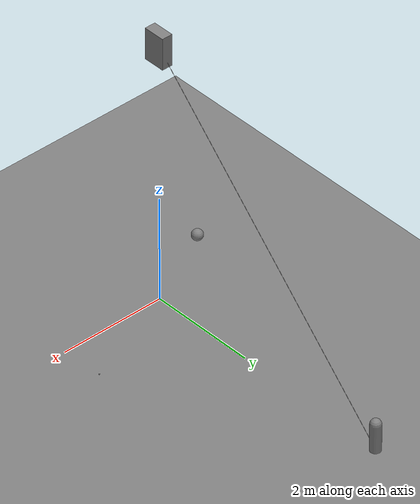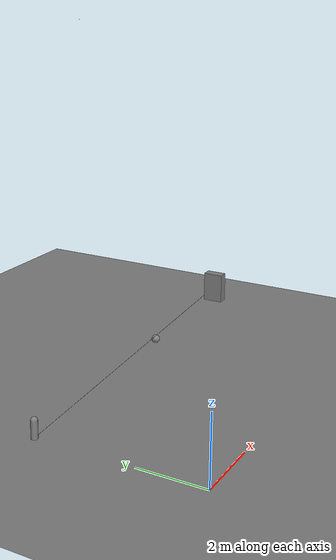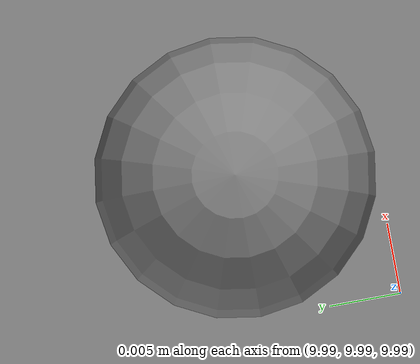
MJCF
<mujoco>
    <worldbody>
        <body name='b_free' pos='1 2 3'>
            <joint name='j_free' type='free'/>
            <geom name='g_sphere' type='sphere' size='0.1' mass='1'/>
        </body>

        <body name='b_slide' pos='0 0 5'>
            <joint name='j_slide' type='slide' axis='0 0 1' range='-1 1' limited='true'/>
            <geom name='g_box' type='box' size='0.1 0.2 0.3' mass='1'/>
            <site name='s1' pos='0 0 0' size='0.05'/>
        </body>

        <body name='b_hinge' pos='0 5 0'>
            <joint name='j_hinge' type='hinge' axis='0 1 0'/>
            <geom name='g_capsule' type='capsule' size='0.1 0.5' mass='1'/>
            <site name='s2' pos='0 0 0' size='0.05'/>
        </body>

        <body name='mocap_body' mocap='true' pos='10 10 10'>
            <geom name='g_mocap' type='sphere' size='0.01' contype='0' conaffinity='0'/>
        </body>

        <geom name='floor' type='plane' size='50 50 1'/>
    </worldbody>

    <equality>
        <connect name='eq1' body1='b_slide' body2='b_hinge' anchor='0 0 0'/>
        <connect name='eq2' body1='b_hinge' body2='b_slide' anchor='1 2 3'/>
    </equality>

    <tendon>
        <spatial name='ten1'>
            <site site='s1'/>
            <site site='s2'/>
        </spatial>
    </tendon>

    <actuator>
        <motor name='motor_slide' joint='j_slide'/>
    </actuator>

    <sensor>
        <touch name='touch_sensor' site='s1'/>
    </sensor>
</mujoco>
